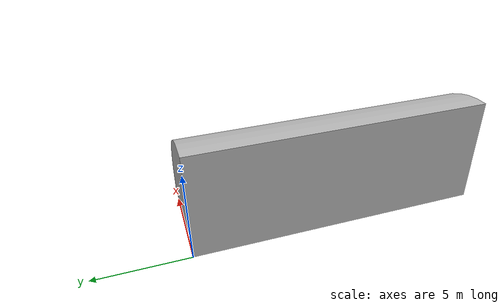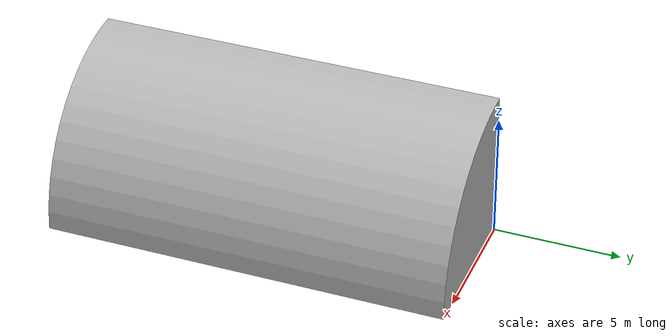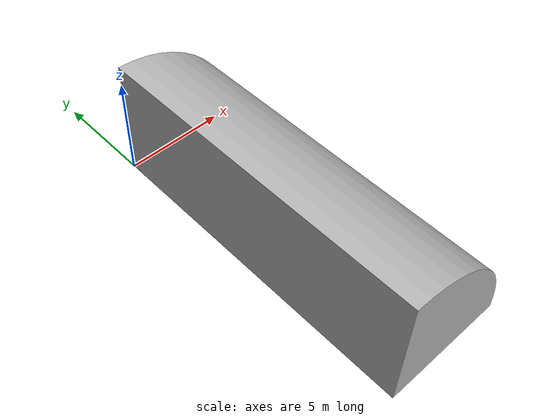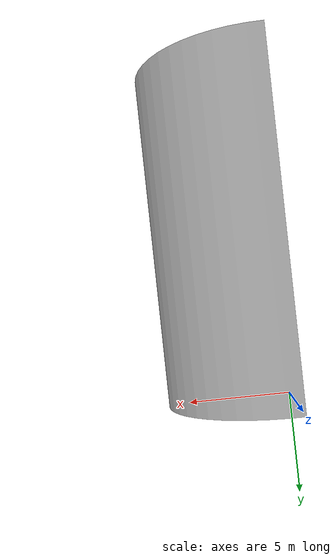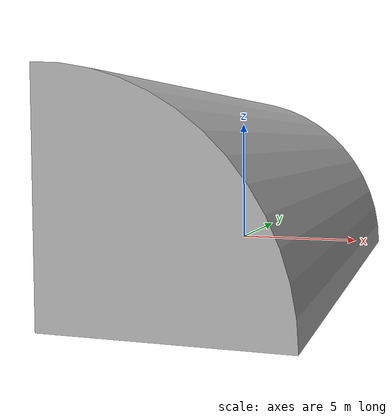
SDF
<?xml version='1.0' ?>
<sdf version="1.6">
    <model name="CubeSoft">
        <static>true</static>
        <link name="link">
            <pose>0 0 0 1.57 3.14159 0</pose>
            <collision name="collision">
                <geometry>
                    <mesh>
                        <uri>meshes/QuarterCylinder_12x16.stl</uri>
                        <scale>0.001 0.001 0.001</scale>
                    </mesh>
                </geometry>
            </collision>
            <visual name="visual">
                <geometry>
                    <mesh>
                        <uri>meshes/QuarterCylinder_12x16.stl</uri>
                        <scale>0.001 0.001 0.001</scale>
                    </mesh>
                </geometry>
            </visual>
        </link>
    </model>
</sdf>
